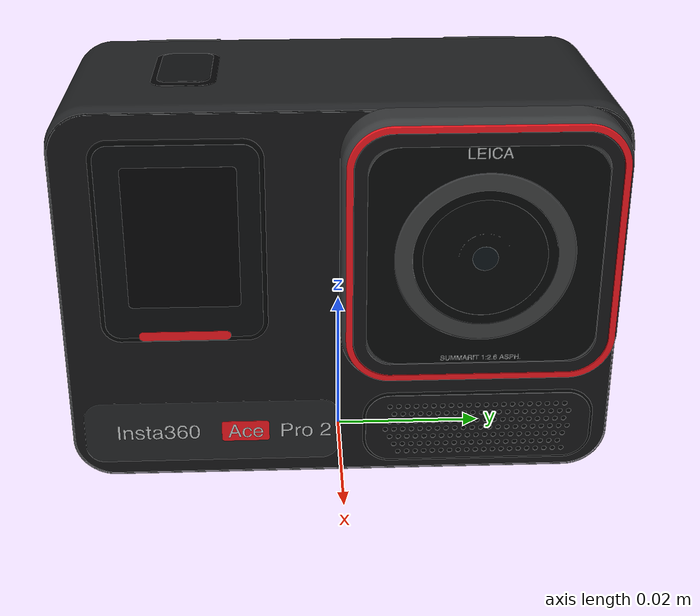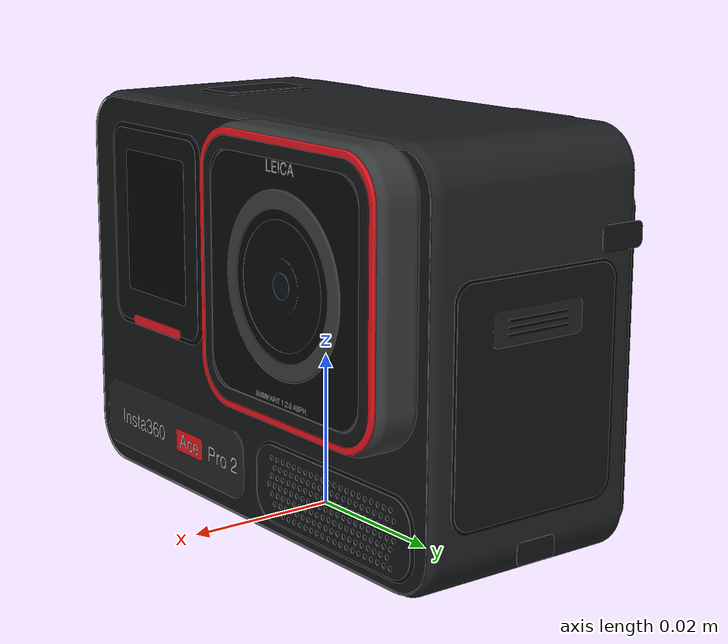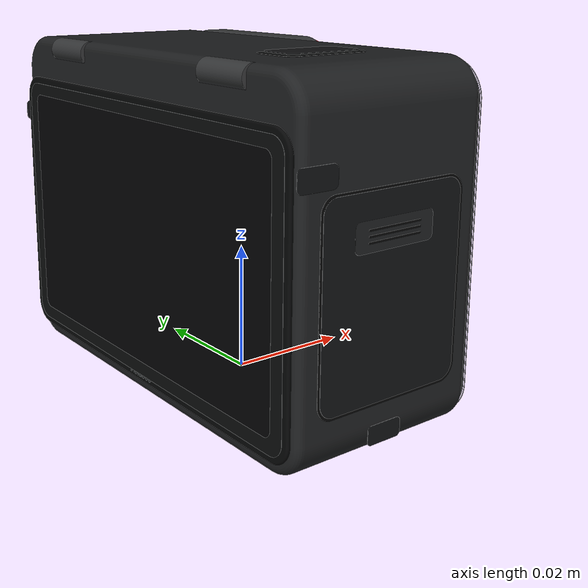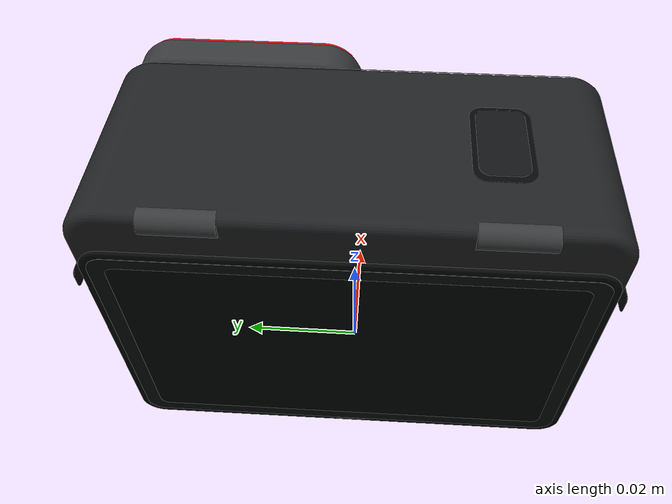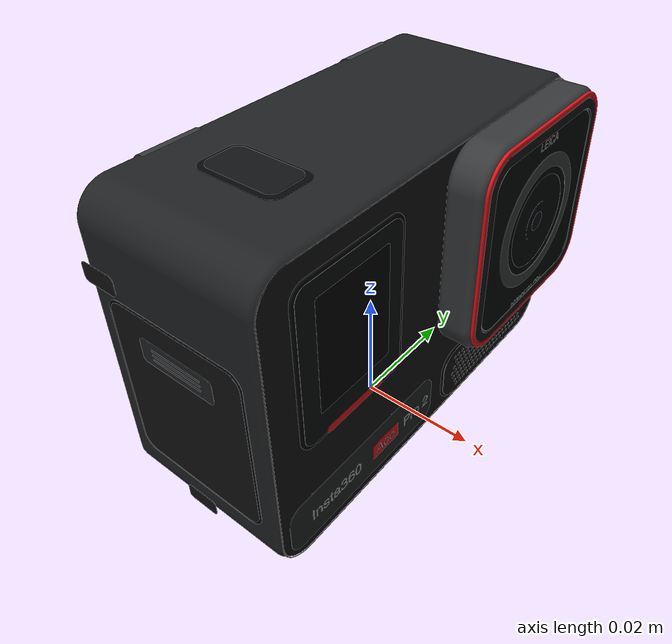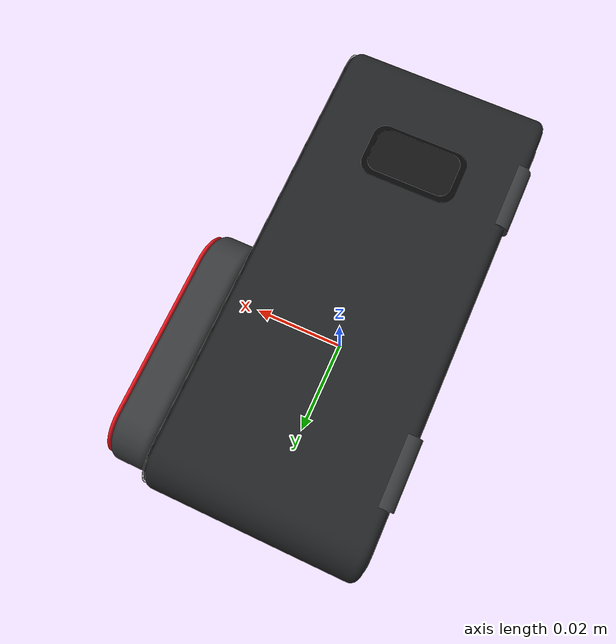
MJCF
<?xml version='1.0' encoding='utf-8'?>
<mujoco model="insta360_ace_pro2">
  <!--Independent approximate geometry; fixed sites are geometric references, not calibrated optical frames.-->
  <compiler angle="radian" inertiafromgeom="false" strippath="false" />
  <option timestep="0.002" gravity="0 0 -9.81" />
  <asset>
    <mesh name="ace_pro2_visual_mesh_0" file="../assets/meshes/visual/accent_red.obj" scale="1 1 1" inertia="shell" />
    <mesh name="ace_pro2_visual_mesh_1" file="../assets/meshes/visual/display_black.obj" scale="1 1 1" inertia="shell" />
    <mesh name="ace_pro2_visual_mesh_2" file="../assets/meshes/visual/housing.obj" scale="1 1 1" inertia="shell" />
    <mesh name="ace_pro2_visual_mesh_3" file="../assets/meshes/visual/lens_ring.obj" scale="1 1 1" inertia="shell" />
    <mesh name="ace_pro2_visual_mesh_4" file="../assets/meshes/visual/markings.obj" scale="1 1 1" inertia="shell" />
    <mesh name="ace_pro2_visual_mesh_5" file="../assets/meshes/visual/muted_markings.obj" scale="1 1 1" inertia="shell" />
    <mesh name="ace_pro2_visual_mesh_6" file="../assets/meshes/visual/optical_glass.obj" scale="1 1 1" inertia="shell" />
    <mesh name="ace_pro2_visual_mesh_7" file="../assets/meshes/visual/optics_black.obj" scale="1 1 1" inertia="shell" />
    <mesh name="ace_pro2_visual_mesh_8" file="../assets/meshes/visual/optics_coating.obj" scale="1 1 1" inertia="shell" />
    <mesh name="ace_pro2_visual_mesh_9" file="../assets/meshes/visual/rubber.obj" scale="1 1 1" inertia="shell" />
    <mesh name="ace_pro2_visual_mesh_10" file="../assets/meshes/visual/screen.obj" scale="1 1 1" inertia="shell" />
    <mesh name="ace_pro2_visual_mesh_11" file="../assets/meshes/visual/screw_metal.obj" scale="1 1 1" inertia="shell" />
    <mesh name="ace_pro2_visual_mesh_12" file="../assets/meshes/visual/seam.obj" scale="1 1 1" inertia="shell" />
    <mesh name="ace_pro2_collision_mesh_0" file="../assets/meshes/collision/body.stl" scale="1 1 1" inertia="convex" />
    <mesh name="ace_pro2_collision_mesh_1" file="../assets/meshes/collision/front_lens.stl" scale="1 1 1" inertia="convex" />
  </asset>
  <worldbody>
    <body name="ace_pro2_link">
      <inertial pos="0 0 0.0261" mass="0.182" diaginertia="0.000119732491667 6.32274066667e-05 0.000100306418333" quat="1 0 0 0" />
      <geom name="ace_pro2_visual_0" type="mesh" mesh="ace_pro2_visual_mesh_0" pos="0 0 0" quat="1 0 0 0" density="0" group="2" contype="0" conaffinity="0" rgba="0.86 0.075 0.105 1" />
      <geom name="ace_pro2_visual_1" type="mesh" mesh="ace_pro2_visual_mesh_1" pos="0 0 0" quat="1 0 0 0" density="0" group="2" contype="0" conaffinity="0" rgba="0.01 0.013 0.015 1" />
      <geom name="ace_pro2_visual_2" type="mesh" mesh="ace_pro2_visual_mesh_2" pos="0 0 0" quat="1 0 0 0" density="0" group="2" contype="0" conaffinity="0" rgba="0.12 0.125 0.13 1" />
      <geom name="ace_pro2_visual_3" type="mesh" mesh="ace_pro2_visual_mesh_3" pos="0 0 0" quat="1 0 0 0" density="0" group="2" contype="0" conaffinity="0" rgba="0.21 0.215 0.22 1" />
      <geom name="ace_pro2_visual_4" type="mesh" mesh="ace_pro2_visual_mesh_4" pos="0 0 0" quat="1 0 0 0" density="0" group="2" contype="0" conaffinity="0" rgba="0.72 0.73 0.73 1" />
      <geom name="ace_pro2_visual_5" type="mesh" mesh="ace_pro2_visual_mesh_5" pos="0 0 0" quat="1 0 0 0" density="0" group="2" contype="0" conaffinity="0" rgba="0.36 0.38 0.39 1" />
      <geom name="ace_pro2_visual_6" type="mesh" mesh="ace_pro2_visual_mesh_6" pos="0 0 0" quat="1 0 0 0" density="0" group="2" contype="0" conaffinity="0" rgba="0.026 0.045 0.042 1" />
      <geom name="ace_pro2_visual_7" type="mesh" mesh="ace_pro2_visual_mesh_7" pos="0 0 0" quat="1 0 0 0" density="0" group="2" contype="0" conaffinity="0" rgba="0.022 0.025 0.026 1" />
      <geom name="ace_pro2_visual_8" type="mesh" mesh="ace_pro2_visual_mesh_8" pos="0 0 0" quat="1 0 0 0" density="0" group="2" contype="0" conaffinity="0" rgba="0.033 0.059 0.078 1" />
      <geom name="ace_pro2_visual_9" type="mesh" mesh="ace_pro2_visual_mesh_9" pos="0 0 0" quat="1 0 0 0" density="0" group="2" contype="0" conaffinity="0" rgba="0.068 0.072 0.076 1" />
      <geom name="ace_pro2_visual_10" type="mesh" mesh="ace_pro2_visual_mesh_10" pos="0 0 0" quat="1 0 0 0" density="0" group="2" contype="0" conaffinity="0" rgba="0.037 0.043 0.047 1" />
      <geom name="ace_pro2_visual_11" type="mesh" mesh="ace_pro2_visual_mesh_11" pos="0 0 0" quat="1 0 0 0" density="0" group="2" contype="0" conaffinity="0" rgba="0.19 0.2 0.21 1" />
      <geom name="ace_pro2_visual_12" type="mesh" mesh="ace_pro2_visual_mesh_12" pos="0 0 0" quat="1 0 0 0" density="0" group="2" contype="0" conaffinity="0" rgba="0.018 0.02 0.022 1" />
      <geom name="ace_pro2_collision_0" type="mesh" mesh="ace_pro2_collision_mesh_0" pos="0 0 0" quat="1 0 0 0" density="0" group="3" contype="1" conaffinity="1" rgba="0 0 0 0" />
      <geom name="ace_pro2_collision_1" type="mesh" mesh="ace_pro2_collision_mesh_1" pos="0 0 0" quat="1 0 0 0" density="0" group="3" contype="1" conaffinity="1" rgba="0 0 0 0" />
      <site name="ace_pro2_mount" pos="0 0 0" quat="1 0 0 0" type="sphere" size="0.001" group="4" rgba="0 0 0 0" />
      <site name="ace_pro2_front_lens_surface" pos="0.019 0.0169684 0.034452" quat="0.500000000002 -0.5 0.499999999998 -0.5" type="sphere" size="0.001" group="4" rgba="0 0 0 0" />
    </body>
  </worldbody>
</mujoco>
